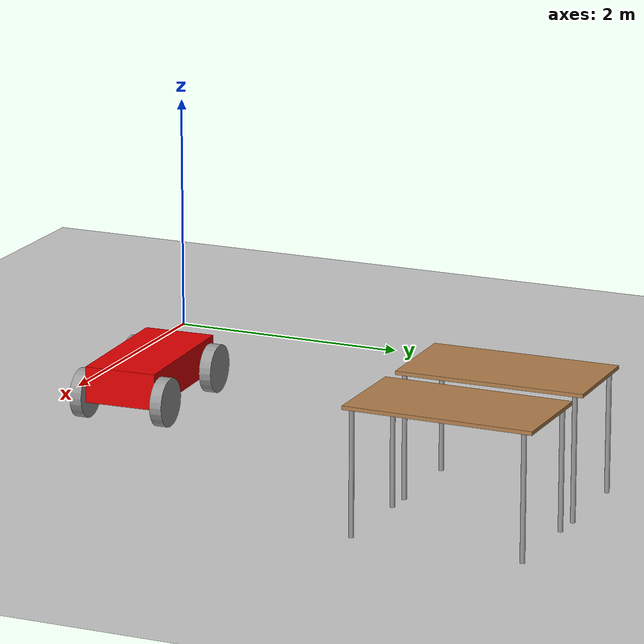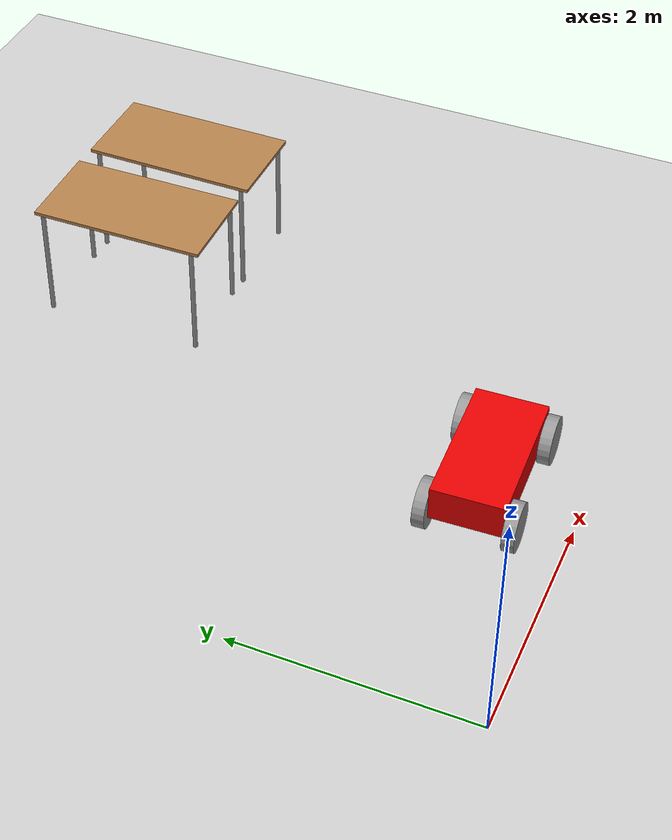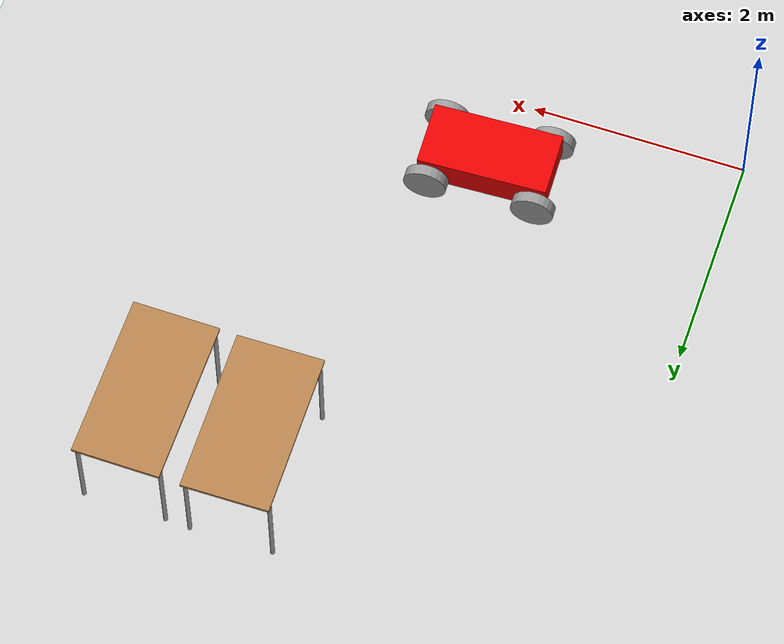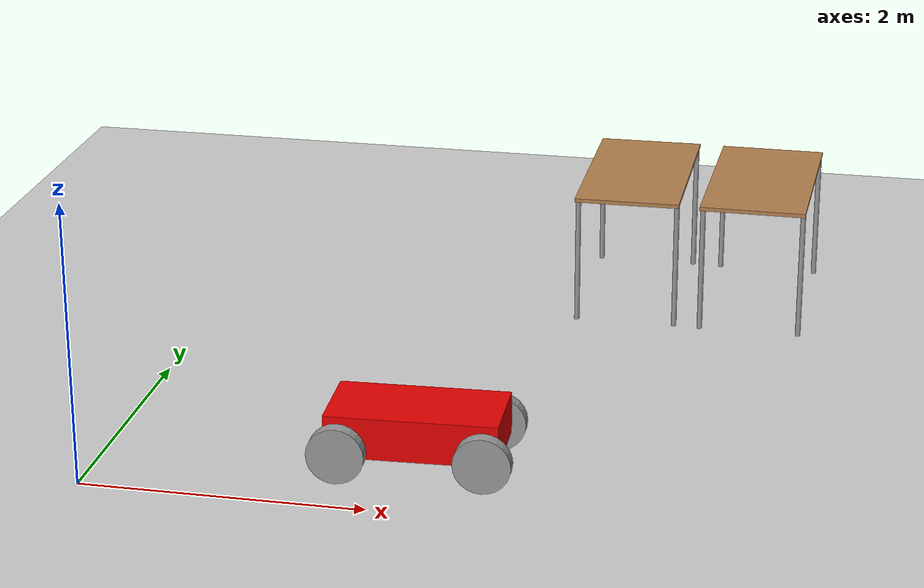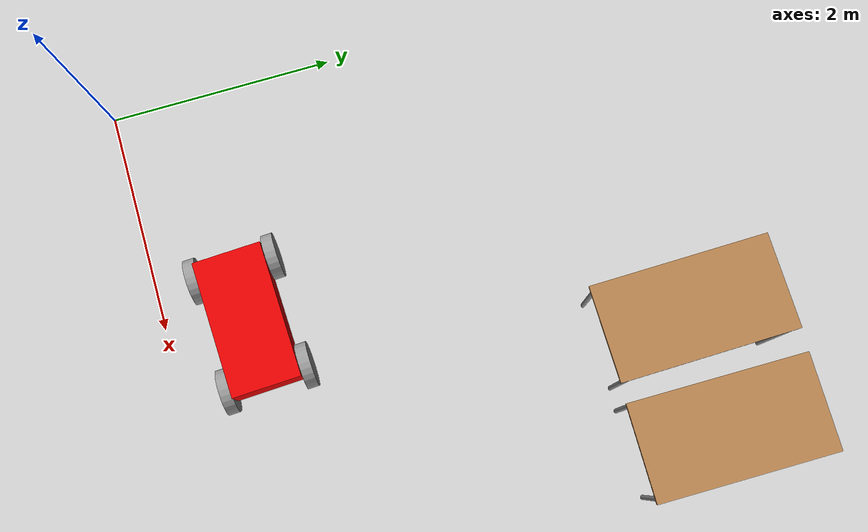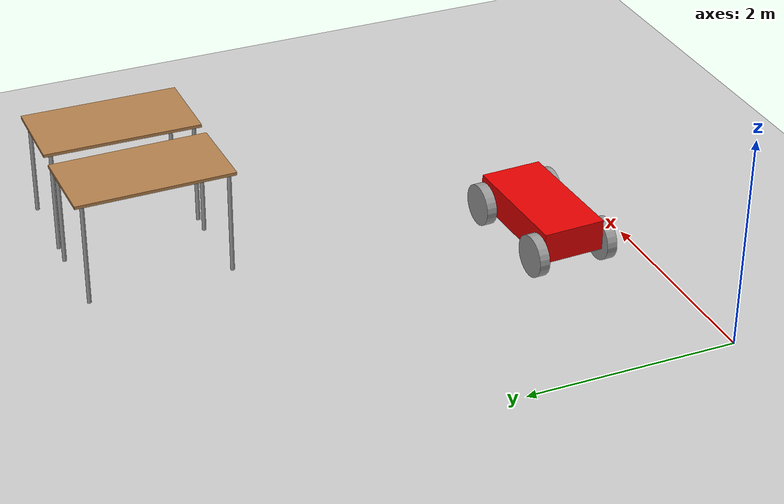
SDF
<sdf version="1.6">
 <world name="office">
  <model name="ground_plane">
   <static>1</static>
   <link name="link">
    <collision name="collision">
     <geometry><plane><normal>0 0 1</normal><size>100 100</size></plane></geometry>
     <surface><friction><ode><mu>100</mu><mu2>50</mu2></ode></friction></surface>
    </collision>
    <visual name="visual">
     <cast_shadows>0</cast_shadows>
     <geometry><plane><normal>0 0 1</normal><size>100 100</size></plane></geometry>
     <material>
      <script><uri>file://media/materials/scripts/gazebo.material</uri><name>Gazebo/Grey</name></script>
     </material>
    </visual>
   </link>
  </model>
  <model name="table">
   <static>1</static>
   <link name="link">
    <collision name="surface">
     <pose>0 0 1 0 -0 0</pose>
     <geometry><box><size>1.5 0.8 0.03</size></box></geometry>
     <surface><friction><ode><mu>0.6</mu><mu2>0.6</mu2></ode></friction></surface>
    </collision>
    <visual name="visual1">
     <pose>0 0 1 0 -0 0</pose>
     <geometry><box><size>1.5 0.8 0.03</size></box></geometry>
     <material>
      <script><uri>file://media/materials/scripts/gazebo.material</uri><name>Gazebo/Wood</name></script>
     </material>
    </visual>
    <collision name="front_left_leg">
     <pose>0.68 0.38 0.5 0 -0 0</pose>
     <geometry><cylinder><radius>0.02</radius><length>1</length></cylinder></geometry>
    </collision>
    <visual name="front_left_leg">
     <pose>0.68 0.38 0.5 0 -0 0</pose>
     <geometry><cylinder><radius>0.02</radius><length>1</length></cylinder></geometry>
     <material>
      <script><uri>file://media/materials/scripts/gazebo.material</uri><name>Gazebo/Grey</name></script>
     </material>
    </visual>
    <collision name="front_right_leg">
     <pose>0.68 -0.38 0.5 0 -0 0</pose>
     <geometry><cylinder><radius>0.02</radius><length>1</length></cylinder></geometry>
    </collision>
    <visual name="front_right_leg">
     <pose>0.68 -0.38 0.5 0 -0 0</pose>
     <geometry><cylinder><radius>0.02</radius><length>1</length></cylinder></geometry>
     <material>
      <script><uri>file://media/materials/scripts/gazebo.material</uri><name>Gazebo/Grey</name></script>
     </material>
    </visual>
    <collision name="back_right_leg">
     <pose>-0.68 -0.38 0.5 0 -0 0</pose>
     <geometry><cylinder><radius>0.02</radius><length>1</length></cylinder></geometry>
    </collision>
    <visual name="back_right_leg">
     <pose>-0.68 -0.38 0.5 0 -0 0</pose>
     <geometry><cylinder><radius>0.02</radius><length>1</length></cylinder></geometry>
     <material>
      <script><uri>file://media/materials/scripts/gazebo.material</uri><name>Gazebo/Grey</name></script>
     </material>
    </visual>
    <collision name="back_left_leg">
     <pose>-0.68 0.38 0.5 0 -0 0</pose>
     <geometry><cylinder><radius>0.02</radius><length>1</length></cylinder></geometry>
    </collision>
    <visual name="back_left_leg">
     <pose>-0.68 0.38 0.5 0 -0 0</pose>
     <geometry><cylinder><radius>0.02</radius><length>1</length></cylinder></geometry>
     <material>
      <script><uri>file://media/materials/scripts/gazebo.material</uri><name>Gazebo/Grey</name></script>
     </material>
    </visual>
   </link>
   <pose>3.18196 4.26318 0 0 -0 1.58279</pose>
  </model>
  <model name="table_0">
   <static>1</static>
   <link name="link">
    <collision name="surface">
     <pose>0 0 1 0 -0 0</pose>
     <geometry><box><size>1.5 0.8 0.03</size></box></geometry>
     <surface><friction><ode><mu>0.6</mu><mu2>0.6</mu2></ode></friction></surface>
    </collision>
    <visual name="visual1">
     <pose>0 0 1 0 -0 0</pose>
     <geometry><box><size>1.5 0.8 0.03</size></box></geometry>
     <material>
      <script><uri>file://media/materials/scripts/gazebo.material</uri><name>Gazebo/Wood</name></script>
     </material>
    </visual>
    <collision name="front_left_leg">
     <pose>0.68 0.38 0.5 0 -0 0</pose>
     <geometry><cylinder><radius>0.02</radius><length>1</length></cylinder></geometry>
    </collision>
    <visual name="front_left_leg">
     <pose>0.68 0.38 0.5 0 -0 0</pose>
     <geometry><cylinder><radius>0.02</radius><length>1</length></cylinder></geometry>
     <material>
      <script><uri>file://media/materials/scripts/gazebo.material</uri><name>Gazebo/Grey</name></script>
     </material>
    </visual>
    <collision name="front_right_leg">
     <pose>0.68 -0.38 0.5 0 -0 0</pose>
     <geometry><cylinder><radius>0.02</radius><length>1</length></cylinder></geometry>
    </collision>
    <visual name="front_right_leg">
     <pose>0.68 -0.38 0.5 0 -0 0</pose>
     <geometry><cylinder><radius>0.02</radius><length>1</length></cylinder></geometry>
     <material>
      <script><uri>file://media/materials/scripts/gazebo.material</uri><name>Gazebo/Grey</name></script>
     </material>
    </visual>
    <collision name="back_right_leg">
     <pose>-0.68 -0.38 0.5 0 -0 0</pose>
     <geometry><cylinder><radius>0.02</radius><length>1</length></cylinder></geometry>
    </collision>
    <visual name="back_right_leg">
     <pose>-0.68 -0.38 0.5 0 -0 0</pose>
     <geometry><cylinder><radius>0.02</radius><length>1</length></cylinder></geometry>
     <material>
      <script><uri>file://media/materials/scripts/gazebo.material</uri><name>Gazebo/Grey</name></script>
     </material>
    </visual>
    <collision name="back_left_leg">
     <pose>-0.68 0.38 0.5 0 -0 0</pose>
     <geometry><cylinder><radius>0.02</radius><length>1</length></cylinder></geometry>
    </collision>
    <visual name="back_left_leg">
     <pose>-0.68 0.38 0.5 0 -0 0</pose>
     <geometry><cylinder><radius>0.02</radius><length>1</length></cylinder></geometry>
     <material>
      <script><uri>file://media/materials/scripts/gazebo.material</uri><name>Gazebo/Grey</name></script>
     </material>
    </visual>
   </link>
   <pose>4.15707 4.25329 0 0 -0 1.56283</pose>
  </model>
  <model name="car_clone">
   <link name="link_0">
    <pose>0 -2e-06 0.088889 0 -0 0</pose>
    <inertial>
     <mass>1</mass>
     <inertia>
      <ixx>0.166667</ixx>
      <ixy>0</ixy>
      <ixz>0</ixz>
      <iyy>0.166667</iyy>
      <iyz>0</iyz>
      <izz>0.166667</izz>
     </inertia>
    </inertial>
    <visual name="visual">
     <geometry><box><size>1.2 0.6 0.3</size></box></geometry>
     <material>
      <lighting>1</lighting>
      <script><uri>file://media/materials/scripts/gazebo.material</uri><name>Gazebo/Grey</name></script>
      <shader type="pixel"><normal_map>__default__</normal_map></shader>
      <ambient>0.9 0 0 1</ambient>
      <diffuse>0.7 0.7 0.7 1</diffuse>
      <specular>0.01 0.01 0.01 1</specular>
      <emissive>0 0 0 1</emissive>
     </material>
    </visual>
    <collision name="collision">
     <geometry><box><size>1.2 0.6 0.3</size></box></geometry>
     <surface>
      <friction>
       <ode><mu>1</mu><mu2>1</mu2><fdir1>0 0 0</fdir1><slip1>0</slip1><slip2>0</slip2></ode>
       <torsional>
        <coefficient>1</coefficient>
        <patch_radius>0</patch_radius>
        <surface_radius>0</surface_radius>
        <use_patch_radius>1</use_patch_radius>
        <ode><slip>0</slip></ode>
       </torsional>
      </friction>
      <bounce><restitution_coefficient>0</restitution_coefficient><threshold>1e+06</threshold></bounce>
      <contact>
       <collide_without_contact>0</collide_without_contact>
       <collide_without_contact_bitmask>1</collide_without_contact_bitmask>
       <collide_bitmask>1</collide_bitmask>
       <ode>
        <soft_cfm>0</soft_cfm>
        <soft_erp>0.2</soft_erp>
        <kp>1e+13</kp>
        <kd>1</kd>
        <max_vel>0.01</max_vel>
        <min_depth>0</min_depth>
       </ode>
       <bullet>
        <split_impulse>1</split_impulse>
        <split_impulse_penetration_threshold>-0.01</split_impulse_penetration_threshold>
        <soft_cfm>0</soft_cfm>
        <soft_erp>0.2</soft_erp>
        <kp>1e+13</kp>
        <kd>1</kd>
       </bullet>
      </contact>
     </surface>
    </collision>
   </link>
   <link name="link_1">
    <pose>-0.5 -0.250002 -0.011111 0 -0 0</pose>
    <inertial>
     <mass>1</mass>
     <inertia>
      <ixx>0.166667</ixx>
      <ixy>0</ixy>
      <ixz>0</ixz>
      <iyy>0.166667</iyy>
      <iyz>0</iyz>
      <izz>0.166667</izz>
     </inertia>
    </inertial>
    <visual name="visual">
     <geometry><box><size>0.1 0.1 0.1</size></box></geometry>
     <material>
      <lighting>1</lighting>
      <script><uri>file://media/materials/scripts/gazebo.material</uri><name>Gazebo/Grey</name></script>
      <shader type="pixel"><normal_map>__default__</normal_map></shader>
      <ambient>0.01 0.01 0.01 1</ambient>
      <diffuse>0.7 0.7 0.7 1</diffuse>
      <specular>0.01 0.01 0.01 1</specular>
      <emissive>0 0 0 1</emissive>
     </material>
    </visual>
    <collision name="collision">
     <geometry><box><size>0.1 0.1 0.1</size></box></geometry>
     <surface>
      <friction>
       <ode><mu>1</mu><mu2>1</mu2><fdir1>0 0 0</fdir1><slip1>0</slip1><slip2>0</slip2></ode>
       <torsional>
        <coefficient>1</coefficient>
        <patch_radius>0</patch_radius>
        <surface_radius>0</surface_radius>
        <use_patch_radius>1</use_patch_radius>
        <ode><slip>0</slip></ode>
       </torsional>
      </friction>
      <bounce><restitution_coefficient>0</restitution_coefficient><threshold>1e+06</threshold></bounce>
      <contact>
       <collide_without_contact>0</collide_without_contact>
       <collide_without_contact_bitmask>1</collide_without_contact_bitmask>
       <collide_bitmask>1</collide_bitmask>
       <ode>
        <soft_cfm>0</soft_cfm>
        <soft_erp>0.2</soft_erp>
        <kp>1e+13</kp>
        <kd>1</kd>
        <max_vel>0.01</max_vel>
        <min_depth>0</min_depth>
       </ode>
       <bullet>
        <split_impulse>1</split_impulse>
        <split_impulse_penetration_threshold>-0.01</split_impulse_penetration_threshold>
        <soft_cfm>0</soft_cfm>
        <soft_erp>0.2</soft_erp>
        <kp>1e+13</kp>
        <kd>1</kd>
       </bullet>
      </contact>
     </surface>
    </collision>
   </link>
   <link name="link_1_clone">
    <pose>-0.5 0.249998 -0.011111 0 -0 0</pose>
    <inertial>
     <mass>1</mass>
     <inertia>
      <ixx>0.166667</ixx>
      <ixy>0</ixy>
      <ixz>0</ixz>
      <iyy>0.166667</iyy>
      <iyz>0</iyz>
      <izz>0.166667</izz>
     </inertia>
    </inertial>
    <visual name="visual">
     <geometry><box><size>0.1 0.1 0.1</size></box></geometry>
     <material>
      <lighting>1</lighting>
      <script><uri>file://media/materials/scripts/gazebo.material</uri><name>Gazebo/Grey</name></script>
      <shader type="pixel"><normal_map>__default__</normal_map></shader>
      <ambient>0.01 0.01 0.01 1</ambient>
      <diffuse>0.7 0.7 0.7 1</diffuse>
      <specular>0.01 0.01 0.01 1</specular>
      <emissive>0 0 0 1</emissive>
     </material>
    </visual>
    <collision name="collision">
     <geometry><box><size>0.1 0.1 0.1</size></box></geometry>
     <surface>
      <friction>
       <ode><mu>1</mu><mu2>1</mu2><fdir1>0 0 0</fdir1><slip1>0</slip1><slip2>0</slip2></ode>
       <torsional>
        <coefficient>1</coefficient>
        <patch_radius>0</patch_radius>
        <surface_radius>0</surface_radius>
        <use_patch_radius>1</use_patch_radius>
        <ode><slip>0</slip></ode>
       </torsional>
      </friction>
      <bounce><restitution_coefficient>0</restitution_coefficient><threshold>1e+06</threshold></bounce>
      <contact>
       <collide_without_contact>0</collide_without_contact>
       <collide_without_contact_bitmask>1</collide_without_contact_bitmask>
       <collide_bitmask>1</collide_bitmask>
       <ode>
        <soft_cfm>0</soft_cfm>
        <soft_erp>0.2</soft_erp>
        <kp>1e+13</kp>
        <kd>1</kd>
        <max_vel>0.01</max_vel>
        <min_depth>0</min_depth>
       </ode>
       <bullet>
        <split_impulse>1</split_impulse>
        <split_impulse_penetration_threshold>-0.01</split_impulse_penetration_threshold>
        <soft_cfm>0</soft_cfm>
        <soft_erp>0.2</soft_erp>
        <kp>1e+13</kp>
        <kd>1</kd>
       </bullet>
      </contact>
     </surface>
    </collision>
   </link>
   <link name="link_1_clone_0">
    <pose>0.5 -0.250002 -0.011111 0 -0 0</pose>
    <inertial>
     <mass>1</mass>
     <inertia>
      <ixx>0.166667</ixx>
      <ixy>0</ixy>
      <ixz>0</ixz>
      <iyy>0.166667</iyy>
      <iyz>0</iyz>
      <izz>0.166667</izz>
     </inertia>
    </inertial>
    <visual name="visual">
     <geometry><box><size>0.1 0.1 0.1</size></box></geometry>
     <material>
      <lighting>1</lighting>
      <script><uri>file://media/materials/scripts/gazebo.material</uri><name>Gazebo/Grey</name></script>
      <shader type="pixel"><normal_map>__default__</normal_map></shader>
      <ambient>0.01 0.01 0.01 1</ambient>
      <diffuse>0.7 0.7 0.7 1</diffuse>
      <specular>0.01 0.01 0.01 1</specular>
      <emissive>0 0 0 1</emissive>
     </material>
    </visual>
    <collision name="collision">
     <geometry><box><size>0.1 0.1 0.1</size></box></geometry>
     <surface>
      <friction>
       <ode><mu>1</mu><mu2>1</mu2><fdir1>0 0 0</fdir1><slip1>0</slip1><slip2>0</slip2></ode>
       <torsional>
        <coefficient>1</coefficient>
        <patch_radius>0</patch_radius>
        <surface_radius>0</surface_radius>
        <use_patch_radius>1</use_patch_radius>
        <ode><slip>0</slip></ode>
       </torsional>
      </friction>
      <bounce><restitution_coefficient>0</restitution_coefficient><threshold>1e+06</threshold></bounce>
      <contact>
       <collide_without_contact>0</collide_without_contact>
       <collide_without_contact_bitmask>1</collide_without_contact_bitmask>
       <collide_bitmask>1</collide_bitmask>
       <ode>
        <soft_cfm>0</soft_cfm>
        <soft_erp>0.2</soft_erp>
        <kp>1e+13</kp>
        <kd>1</kd>
        <max_vel>0.01</max_vel>
        <min_depth>0</min_depth>
       </ode>
       <bullet>
        <split_impulse>1</split_impulse>
        <split_impulse_penetration_threshold>-0.01</split_impulse_penetration_threshold>
        <soft_cfm>0</soft_cfm>
        <soft_erp>0.2</soft_erp>
        <kp>1e+13</kp>
        <kd>1</kd>
       </bullet>
      </contact>
     </surface>
    </collision>
   </link>
   <link name="link_1_clone_1">
    <pose>0.5 0.249998 -0.011111 0 -0 0</pose>
    <inertial>
     <mass>1</mass>
     <inertia>
      <ixx>0.166667</ixx>
      <ixy>0</ixy>
      <ixz>0</ixz>
      <iyy>0.166667</iyy>
      <iyz>0</iyz>
      <izz>0.166667</izz>
     </inertia>
    </inertial>
    <visual name="visual">
     <geometry><box><size>0.1 0.1 0.1</size></box></geometry>
     <material>
      <lighting>1</lighting>
      <script><uri>file://media/materials/scripts/gazebo.material</uri><name>Gazebo/Grey</name></script>
      <shader type="pixel"><normal_map>__default__</normal_map></shader>
      <ambient>0.01 0.01 0.01 1</ambient>
      <diffuse>0.7 0.7 0.7 1</diffuse>
      <specular>0.01 0.01 0.01 1</specular>
      <emissive>0 0 0 1</emissive>
     </material>
    </visual>
    <collision name="collision">
     <geometry><box><size>0.1 0.1 0.1</size></box></geometry>
     <surface>
      <friction>
       <ode><mu>1</mu><mu2>1</mu2><fdir1>0 0 0</fdir1><slip1>0</slip1><slip2>0</slip2></ode>
       <torsional>
        <coefficient>1</coefficient>
        <patch_radius>0</patch_radius>
        <surface_radius>0</surface_radius>
        <use_patch_radius>1</use_patch_radius>
        <ode><slip>0</slip></ode>
       </torsional>
      </friction>
      <bounce><restitution_coefficient>0</restitution_coefficient><threshold>1e+06</threshold></bounce>
      <contact>
       <collide_without_contact>0</collide_without_contact>
       <collide_without_contact_bitmask>1</collide_without_contact_bitmask>
       <collide_bitmask>1</collide_bitmask>
       <ode>
        <soft_cfm>0</soft_cfm>
        <soft_erp>0.2</soft_erp>
        <kp>1e+13</kp>
        <kd>1</kd>
        <max_vel>0.01</max_vel>
        <min_depth>0</min_depth>
       </ode>
       <bullet>
        <split_impulse>1</split_impulse>
        <split_impulse_penetration_threshold>-0.01</split_impulse_penetration_threshold>
        <soft_cfm>0</soft_cfm>
        <soft_erp>0.2</soft_erp>
        <kp>1e+13</kp>
        <kd>1</kd>
       </bullet>
      </contact>
     </surface>
    </collision>
   </link>
   <link name="link_2">
    <pose>-0.5 -0.350002 -0.011111 0 -0 0</pose>
    <inertial>
     <mass>1</mass>
     <inertia><ixx>0.145833</ixx><ixy>0</ixy><ixz>0</ixz><iyy>0.145833</iyy><iyz>0</iyz><izz>0.125</izz></inertia>
    </inertial>
    <visual name="visual">
     <pose>0 0 0 1.5707 -0 0</pose>
     <geometry><cylinder><radius>0.2</radius><length>0.1</length></cylinder></geometry>
     <material>
      <lighting>1</lighting>
      <script><uri>file://media/materials/scripts/gazebo.material</uri><name>Gazebo/Grey</name></script>
      <shader type="pixel"><normal_map>__default__</normal_map></shader>
      <ambient>0.01 0.01 0.01 1</ambient>
      <diffuse>0.7 0.7 0.7 1</diffuse>
      <specular>0.01 0.01 0.01 1</specular>
      <emissive>0 0 0 1</emissive>
     </material>
    </visual>
    <collision name="collision">
     <pose>0 0 0 1.5707 -0 0</pose>
     <geometry><cylinder><radius>0.2</radius><length>0.1</length></cylinder></geometry>
     <surface>
      <friction>
       <ode><mu>1</mu><mu2>1</mu2><fdir1>0 0 0</fdir1><slip1>0</slip1><slip2>0</slip2></ode>
       <torsional>
        <coefficient>1</coefficient>
        <patch_radius>0</patch_radius>
        <surface_radius>0</surface_radius>
        <use_patch_radius>1</use_patch_radius>
        <ode><slip>0</slip></ode>
       </torsional>
      </friction>
      <bounce><restitution_coefficient>0</restitution_coefficient><threshold>1e+06</threshold></bounce>
      <contact>
       <collide_without_contact>0</collide_without_contact>
       <collide_without_contact_bitmask>1</collide_without_contact_bitmask>
       <collide_bitmask>1</collide_bitmask>
       <ode>
        <soft_cfm>0</soft_cfm>
        <soft_erp>0.2</soft_erp>
        <kp>1e+13</kp>
        <kd>1</kd>
        <max_vel>0.01</max_vel>
        <min_depth>0</min_depth>
       </ode>
       <bullet>
        <split_impulse>1</split_impulse>
        <split_impulse_penetration_threshold>-0.01</split_impulse_penetration_threshold>
        <soft_cfm>0</soft_cfm>
        <soft_erp>0.2</soft_erp>
        <kp>1e+13</kp>
        <kd>1</kd>
       </bullet>
      </contact>
     </surface>
    </collision>
   </link>
   <link name="link_2_clone">
    <pose>-0.5 0.349998 -0.011111 0 -0 0</pose>
    <inertial>
     <mass>1</mass>
     <inertia><ixx>0.145833</ixx><ixy>0</ixy><ixz>0</ixz><iyy>0.145833</iyy><iyz>0</iyz><izz>0.125</izz></inertia>
    </inertial>
    <visual name="visual">
     <pose>0 0 0 1.5707 -0 0</pose>
     <geometry><cylinder><radius>0.2</radius><length>0.1</length></cylinder></geometry>
     <material>
      <lighting>1</lighting>
      <script><uri>file://media/materials/scripts/gazebo.material</uri><name>Gazebo/Grey</name></script>
      <shader type="pixel"><normal_map>__default__</normal_map></shader>
      <ambient>0.01 0.01 0.01 1</ambient>
      <diffuse>0.7 0.7 0.7 1</diffuse>
      <specular>0.01 0.01 0.01 1</specular>
      <emissive>0 0 0 1</emissive>
     </material>
    </visual>
    <collision name="collision">
     <pose>0 0 0 1.5707 -0 0</pose>
     <geometry><cylinder><radius>0.2</radius><length>0.1</length></cylinder></geometry>
     <surface>
      <friction>
       <ode><mu>1</mu><mu2>1</mu2><fdir1>0 0 0</fdir1><slip1>0</slip1><slip2>0</slip2></ode>
       <torsional>
        <coefficient>1</coefficient>
        <patch_radius>0</patch_radius>
        <surface_radius>0</surface_radius>
        <use_patch_radius>1</use_patch_radius>
        <ode><slip>0</slip></ode>
       </torsional>
      </friction>
      <bounce><restitution_coefficient>0</restitution_coefficient><threshold>1e+06</threshold></bounce>
      <contact>
       <collide_without_contact>0</collide_without_contact>
       <collide_without_contact_bitmask>1</collide_without_contact_bitmask>
       <collide_bitmask>1</collide_bitmask>
       <ode>
        <soft_cfm>0</soft_cfm>
        <soft_erp>0.2</soft_erp>
        <kp>1e+13</kp>
        <kd>1</kd>
        <max_vel>0.01</max_vel>
        <min_depth>0</min_depth>
       </ode>
       <bullet>
        <split_impulse>1</split_impulse>
        <split_impulse_penetration_threshold>-0.01</split_impulse_penetration_threshold>
        <soft_cfm>0</soft_cfm>
        <soft_erp>0.2</soft_erp>
        <kp>1e+13</kp>
        <kd>1</kd>
       </bullet>
      </contact>
     </surface>
    </collision>
   </link>
   <link name="link_2_clone_0">
    <pose>0.5 -0.350021 -0.011111 0 -0 0</pose>
    <inertial>
     <mass>1</mass>
     <inertia><ixx>0.145833</ixx><ixy>0</ixy><ixz>0</ixz><iyy>0.145833</iyy><iyz>0</iyz><izz>0.125</izz></inertia>
    </inertial>
    <visual name="visual">
     <pose>0 0 0 1.5707 -0 0</pose>
     <geometry><cylinder><radius>0.2</radius><length>0.1</length></cylinder></geometry>
     <material>
      <lighting>1</lighting>
      <script><uri>file://media/materials/scripts/gazebo.material</uri><name>Gazebo/Grey</name></script>
      <shader type="pixel"><normal_map>__default__</normal_map></shader>
      <ambient>0.01 0.01 0.01 1</ambient>
      <diffuse>0.7 0.7 0.7 1</diffuse>
      <specular>0.01 0.01 0.01 1</specular>
      <emissive>0 0 0 1</emissive>
     </material>
    </visual>
    <collision name="collision">
     <pose>0 0 0 1.5707 -0 0</pose>
     <geometry><cylinder><radius>0.2</radius><length>0.1</length></cylinder></geometry>
     <surface>
      <friction>
       <ode><mu>1</mu><mu2>1</mu2><fdir1>0 0 0</fdir1><slip1>0</slip1><slip2>0</slip2></ode>
       <torsional>
        <coefficient>1</coefficient>
        <patch_radius>0</patch_radius>
        <surface_radius>0</surface_radius>
        <use_patch_radius>1</use_patch_radius>
        <ode><slip>0</slip></ode>
       </torsional>
      </friction>
      <bounce><restitution_coefficient>0</restitution_coefficient><threshold>1e+06</threshold></bounce>
      <contact>
       <collide_without_contact>0</collide_without_contact>
       <collide_without_contact_bitmask>1</collide_without_contact_bitmask>
       <collide_bitmask>1</collide_bitmask>
       <ode>
        <soft_cfm>0</soft_cfm>
        <soft_erp>0.2</soft_erp>
        <kp>1e+13</kp>
        <kd>1</kd>
        <max_vel>0.01</max_vel>
        <min_depth>0</min_depth>
       </ode>
       <bullet>
        <split_impulse>1</split_impulse>
        <split_impulse_penetration_threshold>-0.01</split_impulse_penetration_threshold>
        <soft_cfm>0</soft_cfm>
        <soft_erp>0.2</soft_erp>
        <kp>1e+13</kp>
        <kd>1</kd>
       </bullet>
      </contact>
     </surface>
    </collision>
   </link>
   <link name="link_2_clone_1">
    <pose>0.5 0.350017 -0.011111 0 -0 0</pose>
    <inertial>
     <mass>1</mass>
     <inertia><ixx>0.145833</ixx><ixy>0</ixy><ixz>0</ixz><iyy>0.145833</iyy><iyz>0</iyz><izz>0.125</izz></inertia>
    </inertial>
    <visual name="visual">
     <pose>0 0 0 1.5707 -0 0</pose>
     <geometry><cylinder><radius>0.2</radius><length>0.1</length></cylinder></geometry>
     <material>
      <lighting>1</lighting>
      <script><uri>file://media/materials/scripts/gazebo.material</uri><name>Gazebo/Grey</name></script>
      <shader type="pixel"><normal_map>__default__</normal_map></shader>
      <ambient>0.01 0.01 0.01 1</ambient>
      <diffuse>0.7 0.7 0.7 1</diffuse>
      <specular>0.01 0.01 0.01 1</specular>
      <emissive>0 0 0 1</emissive>
     </material>
    </visual>
    <collision name="collision">
     <pose>0 0 0 1.5707 -0 0</pose>
     <geometry><cylinder><radius>0.2</radius><length>0.1</length></cylinder></geometry>
     <surface>
      <friction>
       <ode><mu>1</mu><mu2>1</mu2><fdir1>0 0 0</fdir1><slip1>0</slip1><slip2>0</slip2></ode>
       <torsional>
        <coefficient>1</coefficient>
        <patch_radius>0</patch_radius>
        <surface_radius>0</surface_radius>
        <use_patch_radius>1</use_patch_radius>
        <ode><slip>0</slip></ode>
       </torsional>
      </friction>
      <bounce><restitution_coefficient>0</restitution_coefficient><threshold>1e+06</threshold></bounce>
      <contact>
       <collide_without_contact>0</collide_without_contact>
       <collide_without_contact_bitmask>1</collide_without_contact_bitmask>
       <collide_bitmask>1</collide_bitmask>
       <ode>
        <soft_cfm>0</soft_cfm>
        <soft_erp>0.2</soft_erp>
        <kp>1e+13</kp>
        <kd>1</kd>
        <max_vel>0.01</max_vel>
        <min_depth>0</min_depth>
       </ode>
       <bullet>
        <split_impulse>1</split_impulse>
        <split_impulse_penetration_threshold>-0.01</split_impulse_penetration_threshold>
        <soft_cfm>0</soft_cfm>
        <soft_erp>0.2</soft_erp>
        <kp>1e+13</kp>
        <kd>1</kd>
       </bullet>
      </contact>
     </surface>
    </collision>
   </link>
   <joint name="link_0_JOINT_0" type="fixed">
    <parent>link_0</parent>
    <child>link_1</child>
    <physics>
     <ode><limit><cfm>0</cfm><erp>0.2</erp></limit><suspension><cfm>0</cfm><erp>0.2</erp></suspension></ode>
    </physics>
   </joint>
   <joint name="link_0_JOINT_1" type="fixed">
    <parent>link_0</parent>
    <child>link_1_clone</child>
    <physics>
     <ode><limit><cfm>0</cfm><erp>0.2</erp></limit><suspension><cfm>0</cfm><erp>0.2</erp></suspension></ode>
    </physics>
   </joint>
   <joint name="link_0_JOINT_2" type="fixed">
    <parent>link_0</parent>
    <child>link_1_clone_0</child>
    <physics>
     <ode><limit><cfm>0</cfm><erp>0.2</erp></limit><suspension><cfm>0</cfm><erp>0.2</erp></suspension></ode>
    </physics>
   </joint>
   <joint name="link_0_JOINT_3" type="fixed">
    <parent>link_0</parent>
    <child>link_1_clone_1</child>
    <physics>
     <ode><limit><cfm>0</cfm><erp>0.2</erp></limit><suspension><cfm>0</cfm><erp>0.2</erp></suspension></ode>
    </physics>
   </joint>
   <joint name="link_1_JOINT_4" type="revolute">
    <parent>link_1</parent>
    <child>link_2</child>
    <axis>
     <xyz>0 1 0</xyz>
     <use_parent_model_frame>0</use_parent_model_frame>
     <limit>
      <lower>-1.79769e+308</lower>
      <upper>1.79769e+308</upper>
      <effort>-1</effort>
      <velocity>-1</velocity>
     </limit>
     <dynamics>
      <spring_reference>0</spring_reference>
      <spring_stiffness>0</spring_stiffness>
      <damping>0</damping>
      <friction>0</friction>
     </dynamics>
    </axis>
    <physics>
     <ode><limit><cfm>0</cfm><erp>0.2</erp></limit><suspension><cfm>0</cfm><erp>0.2</erp></suspension></ode>
    </physics>
   </joint>
   <joint name="link_1_clone_0_JOINT_7" type="revolute">
    <parent>link_1_clone_0</parent>
    <child>link_2_clone_0</child>
    <axis>
     <xyz>0 1 0</xyz>
     <use_parent_model_frame>0</use_parent_model_frame>
     <limit>
      <lower>-1.79769e+308</lower>
      <upper>1.79769e+308</upper>
      <effort>-1</effort>
      <velocity>-1</velocity>
     </limit>
     <dynamics>
      <spring_reference>0</spring_reference>
      <spring_stiffness>0</spring_stiffness>
      <damping>0</damping>
     </dynamics>
    </axis>
    <physics>
     <ode><limit><cfm>0</cfm><erp>0.2</erp></limit><suspension><cfm>0</cfm><erp>0.2</erp></suspension></ode>
    </physics>
   </joint>
   <joint name="link_1_clone_1_JOINT_8" type="revolute">
    <parent>link_1_clone_1</parent>
    <child>link_2_clone_1</child>
    <pose>0 0 0 0 0.03 0.02</pose>
    <axis>
     <xyz>0 1 0</xyz>
     <use_parent_model_frame>0</use_parent_model_frame>
     <limit>
      <lower>-1.79769e+308</lower>
      <upper>1.79769e+308</upper>
      <effort>-1</effort>
      <velocity>-1</velocity>
     </limit>
     <dynamics>
      <spring_reference>0</spring_reference>
      <spring_stiffness>0</spring_stiffness>
      <damping>0</damping>
      <friction>0</friction>
     </dynamics>
    </axis>
    <physics>
     <ode><limit><cfm>0</cfm><erp>0.2</erp></limit><suspension><cfm>0</cfm><erp>0.2</erp></suspension></ode>
    </physics>
   </joint>
   <joint name="link_1_clone_JOINT_6" type="revolute">
    <parent>link_1_clone</parent>
    <child>link_2_clone</child>
    <axis>
     <xyz>0 1 0</xyz>
     <use_parent_model_frame>0</use_parent_model_frame>
     <limit>
      <lower>-1.79769e+308</lower>
      <upper>1.79769e+308</upper>
      <effort>-1</effort>
      <velocity>-1</velocity>
     </limit>
     <dynamics>
      <spring_reference>0</spring_reference>
      <spring_stiffness>0</spring_stiffness>
      <damping>0</damping>
     </dynamics>
    </axis>
    <physics>
     <ode><limit><cfm>0</cfm><erp>0.2</erp></limit><suspension><cfm>0</cfm><erp>0.2</erp></suspension></ode>
    </physics>
   </joint>
   <static>0</static>
   <pose>2.18355 0.758613 0.211109 3e-06 9e-06 0.04079</pose>
  </model>
 </world>
</sdf>
